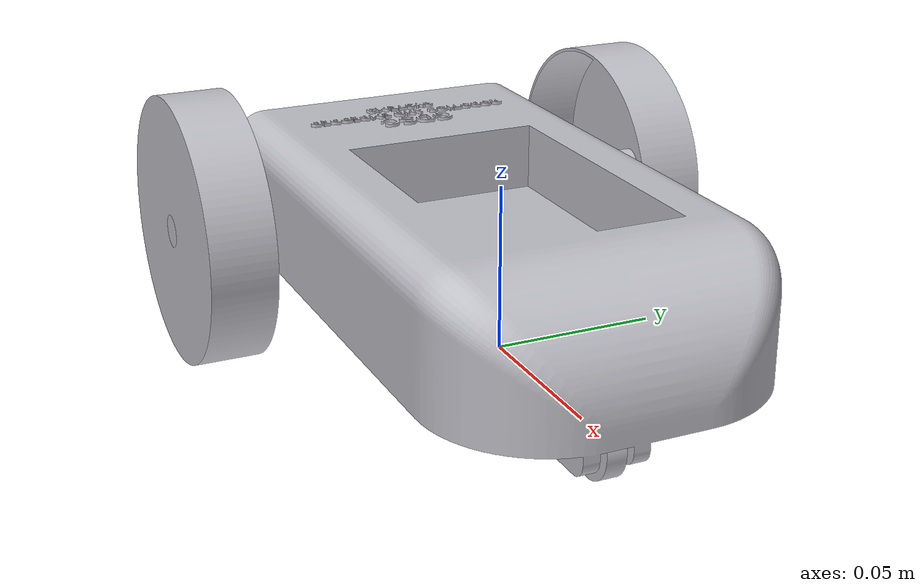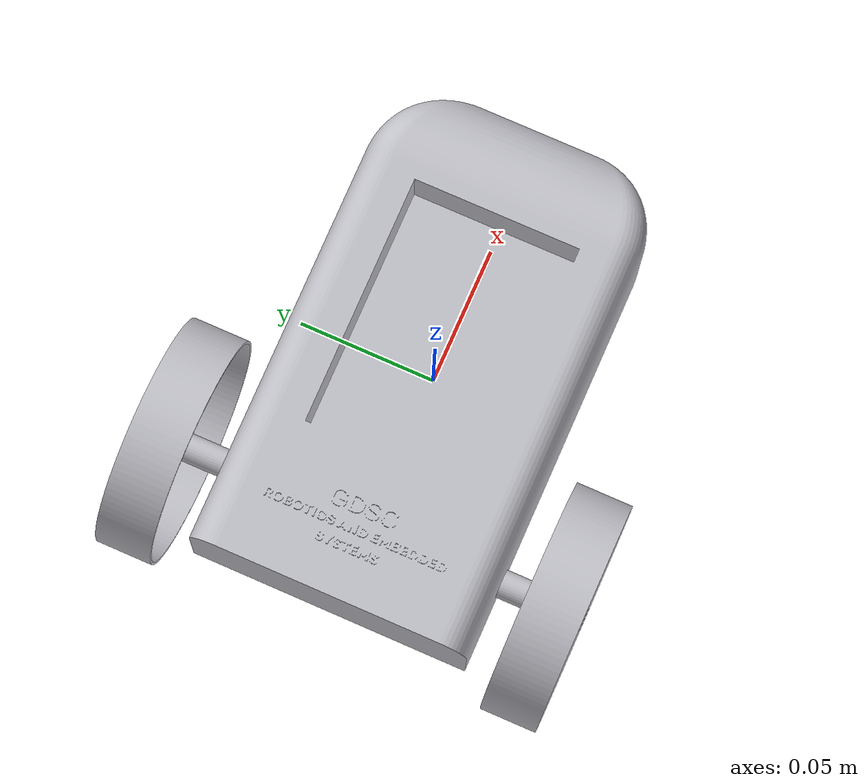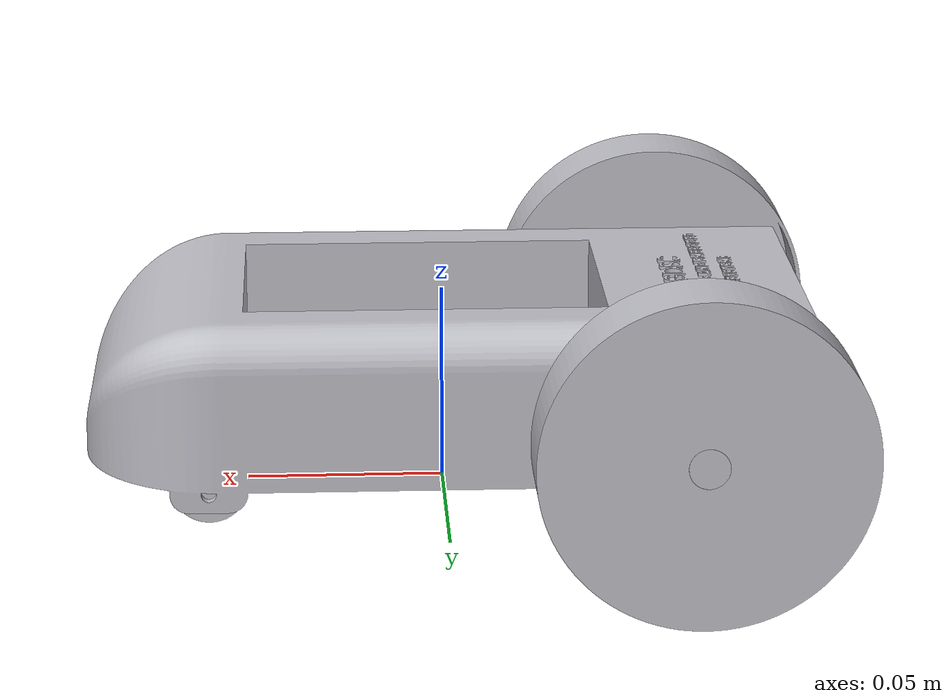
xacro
<?xml version="1.0"?>
<robot name="robot" xmlns:xacro="http://www.ros.org/wiki/xacro">

  <xacro:include filename="$(find robot_description)/urdf/materials.xacro" />
<xacro:include filename="$(find robot_description)/urdf/robot.gazebo" />
  <link name="dummy"></link>
  <joint name="BASE_DUMMY" type="fixed">
    <parent link="dummy"/>
    <child link="base_link"/>
  </joint>
  <link name="base_link">
    <inertial>
      <origin xyz="-0.004690606601262755 -0.0006425987553997995 0.030515102964434798" rpy="0 0 0"/>
      <mass value="4.4495589047824"/>
      <inertia ixx="0.004505" iyy="0.012996" izz="0.016333" ixy="0.0" iyz="-0.0" ixz="0.000373"/>
    </inertial>
    <visual>
      <origin xyz="0 0 0" rpy="0 0 0"/>
      <geometry>
        <mesh filename="package://robot_description/meshes/base_link.stl" scale="0.001 0.001 0.001"/>
      </geometry>
      <material name="silver"/>
    </visual>
    <collision>
      <origin xyz="0 0 0" rpy="0 0 0"/>
      <geometry>
        <mesh filename="package://robot_description/meshes/base_link.stl" scale="0.001 0.001 0.001"/>
      </geometry>
    </collision>
  </link>

  <link name="LONG_ROD_1">
    <inertial>
      <origin xyz="-4.7039776361612606e-07 3.7747709572379454e-07 -1.5861750109202877e-07" rpy="0 0 0"/>
      <mass value="0.09864600932271947"/>
      <inertia ixx="0.000211" iyy="1e-06" izz="0.000211" ixy="0.0" iyz="-0.0" ixz="0.0"/>
    </inertial>
    <visual>
      <origin xyz="0.059929 0.000643 -0.028396" rpy="0 0 0"/>
      <geometry>
        <mesh filename="package://robot_description/meshes/LONG_ROD_1.stl" scale="0.001 0.001 0.001"/>
      </geometry>
      <material name="silver"/>
    </visual>
    <collision>
      <origin xyz="0.059929 0.000643 -0.028396" rpy="0 0 0"/>
      <geometry>
        <mesh filename="package://robot_description/meshes/LONG_ROD_1.stl" scale="0.001 0.001 0.001"/>
      </geometry>
    </collision>
  </link>

  <link name="RIGHT_WHEEL_1">
    <inertial>
      <origin xyz="-4.703977669884285e-07 -0.0053165239671758985 -1.586175011232538e-07" rpy="0 0 0"/>
      <mass value="0.0787935005491991"/>
      <inertia ixx="5.2e-05" iyy="9.7e-05" izz="5.2e-05" ixy="0.0" iyz="0.0" ixz="0.0"/>
    </inertial>
    <visual>
      <origin xyz="0.059929 -0.079357 -0.028396" rpy="0 0 0"/>
      <geometry>
        <mesh filename="package://robot_description/meshes/RIGHT_WHEEL_1.stl" scale="0.001 0.001 0.001"/>
      </geometry>
      <material name="silver"/>
    </visual>
    <collision>
      <origin xyz="0.059929 -0.079357 -0.028396" rpy="0 0 0"/>
      <geometry>
        <mesh filename="package://robot_description/meshes/RIGHT_WHEEL_1.stl" scale="0.001 0.001 0.001"/>
      </geometry>
    </collision>
  </link>

  <link name="LEFT_WHEEL_1">
    <inertial>
      <origin xyz="-4.7039775963320096e-07 0.005317278921367477 -1.5861750114753992e-07" rpy="0 0 0"/>
      <mass value="0.0787935005491991"/>
      <inertia ixx="5.2e-05" iyy="9.7e-05" izz="5.2e-05" ixy="0.0" iyz="0.0" ixz="-0.0"/>
    </inertial>
    <visual>
      <origin xyz="0.059929 0.080643 -0.028396" rpy="0 0 0"/>
      <geometry>
        <mesh filename="package://robot_description/meshes/LEFT_WHEEL_1.stl" scale="0.001 0.001 0.001"/>
      </geometry>
      <material name="silver"/>
    </visual>
    <collision>
      <origin xyz="0.059929 0.080643 -0.028396" rpy="0 0 0"/>
      <geometry>
        <mesh filename="package://robot_description/meshes/LEFT_WHEEL_1.stl" scale="0.001 0.001 0.001"/>
      </geometry>
    </collision>
  </link>

  <link name="SHORT_ROD_1">
    <inertial>
      <origin xyz="-4.7039797227560465e-07 3.7747709555758634e-07 -1.5861750122581932e-07" rpy="0 0 0"/>
      <mass value="0.001479690139840857"/>
      <inertia ixx="0.0" iyy="0.0" izz="0.0" ixy="0.0" iyz="-0.0" ixz="0.0"/>
    </inertial>
    <visual>
      <origin xyz="-0.060071 0.000643 0.001604" rpy="0 0 0"/>
      <geometry>
        <mesh filename="package://robot_description/meshes/SHORT_ROD_1.stl" scale="0.001 0.001 0.001"/>
      </geometry>
      <material name="silver"/>
    </visual>
    <collision>
      <origin xyz="-0.060071 0.000643 0.001604" rpy="0 0 0"/>
      <geometry>
        <mesh filename="package://robot_description/meshes/SHORT_ROD_1.stl" scale="0.001 0.001 0.001"/>
      </geometry>
    </collision>
  </link>

  <link name="FRONT_WHEEL_1">
    <inertial>
      <origin xyz="-4.7039776295693114e-07 3.774770956737044e-07 -1.5861750995429733e-07" rpy="0 0 0"/>
      <mass value="0.014205025342471582"/>
      <inertia ixx="0.0" iyy="1e-06" izz="0.0" ixy="0.0" iyz="0.0" ixz="-0.0"/>
    </inertial>
    <visual>
      <origin xyz="-0.060071 0.000643 0.001604" rpy="0 0 0"/>
      <geometry>
        <mesh filename="package://robot_description/meshes/FRONT_WHEEL_1.stl" scale="0.001 0.001 0.001"/>
      </geometry>
      <material name="silver"/>
    </visual>
    <collision>
      <origin xyz="-0.060071 0.000643 0.001604" rpy="0 0 0"/>
      <geometry>
        <mesh filename="package://robot_description/meshes/FRONT_WHEEL_1.stl" scale="0.001 0.001 0.001"/>
      </geometry>
    </collision>
  </link>

  <joint name="base_LONG" type="fixed">
    <origin xyz="-0.059929 -0.000643 0.028396" rpy="0 0 0"/>
    <parent link="base_link"/>
    <child link="LONG_ROD_1"/>
  </joint>

  <joint name="LONG_RIGHT" type="continuous">
    <origin xyz="0.0 0.08 0.0" rpy="0 0 0"/>
    <parent link="LONG_ROD_1"/>
    <child link="RIGHT_WHEEL_1"/>
    <axis xyz="-0.0 -1.0 -0.0"/>
  </joint>

  <joint name="LONG_LEFT" type="continuous">
    <origin xyz="0.0 -0.08 0.0" rpy="0 0 0"/>
    <parent link="LONG_ROD_1"/>
    <child link="LEFT_WHEEL_1"/>
    <axis xyz="-0.0 -1.0 -0.0"/>
  </joint>

  <joint name="base_FRONT" type="fixed">
    <origin xyz="0.060071 -0.000643 -0.001604" rpy="0 0 0"/>
    <parent link="base_link"/>
    <child link="SHORT_ROD_1"/>
  </joint>

  <joint name="FRONT_FRONTW" type="fixed">
    <origin xyz="0.0 0.0 0.0" rpy="0 0 0"/>
    <parent link="SHORT_ROD_1"/>
    <child link="FRONT_WHEEL_1"/>
  </joint>

</robot>

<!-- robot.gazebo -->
<robot name="robot" xmlns:xacro="http://www.ros.org/wiki/xacro">

  <xacro:property name="body_color" value="Gazebo/Silver" />

  <gazebo>
    <plugin name="control" filename="libgazebo_ros_control.so">
      <controlPeriod>0.001</controlPeriod>
      <legacyModeNS>false</legacyModeNS>
    </plugin>
  </gazebo>
  <!--################################
  ROS-Controllers ######################################-->
  <gazebo>
    <plugin name="diff_drive_controller" filename="libgazebo_ros_diff_drive.so">
      <legacyMode>false</legacyMode>
      <alwaysOn>true</alwaysOn>
      <updateRate>1000.0</updateRate>
      <leftJoint>LONG_LEFT</leftJoint>
      <rightJoint>LONG_RIGHT</rightJoint>
      <wheelSeparation>0.16</wheelSeparation>
      <wheelDiameter>0.082</wheelDiameter>
      <wheelTorque>10</wheelTorque>
      <publishTf>1</publishTf>
      <odometryFrame>map</odometryFrame>
      <commandTopic>cmd_vel</commandTopic>
      <odometryTopic>odom</odometryTopic>
      <robotBaseFrame>base_link</robotBaseFrame>
      <wheelAcceleration>2.8</wheelAcceleration>
      <publishWheelJointState>true</publishWheelJointState>
      <publishWheelTF>false</publishWheelTF>
      <odometrySource>world</odometrySource>
      <rosDebugLevel>Debug</rosDebugLevel>
    </plugin>
  </gazebo>

  <gazebo reference="base_link">
    <material>${body_color}</material>
    <selfCollide>true</selfCollide>
    <gravity>true</gravity>
  </gazebo>

  <gazebo reference="RIGHT_WHEEL_1">
    <material>${body_color}</material>
    <mu1>1.0</mu1>
    <mu2>1.0</mu2>
    <selfCollide>true</selfCollide>
  </gazebo>

  <gazebo reference="LEFT_WHEEL_1">
    <material>${body_color}</material>
    <mu1>1.0</mu1>
    <mu2>1.0</mu2>
    <selfCollide>true</selfCollide>
  </gazebo>

  <gazebo reference="FRONT_WHEEL_1">
    <material>${body_color}</material>
    <mu1>0.0</mu1>
    <mu2>0.0</mu2>
    <selfCollide>true</selfCollide>
  </gazebo>

</robot>
